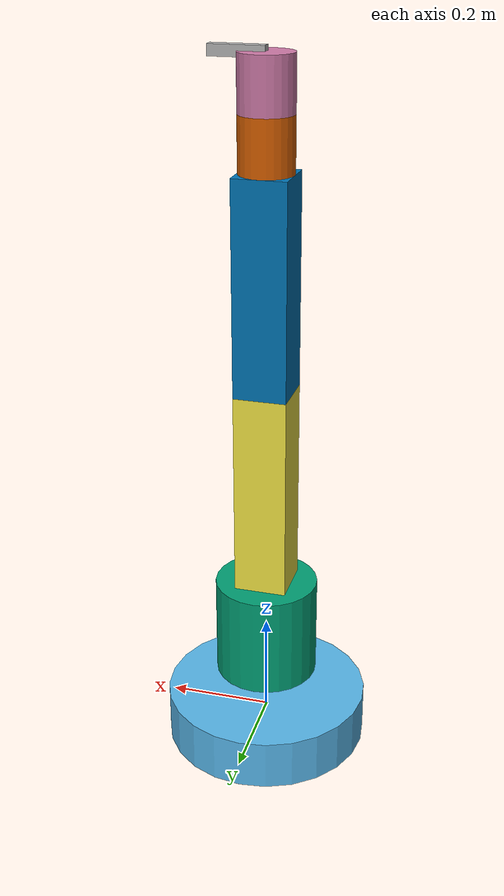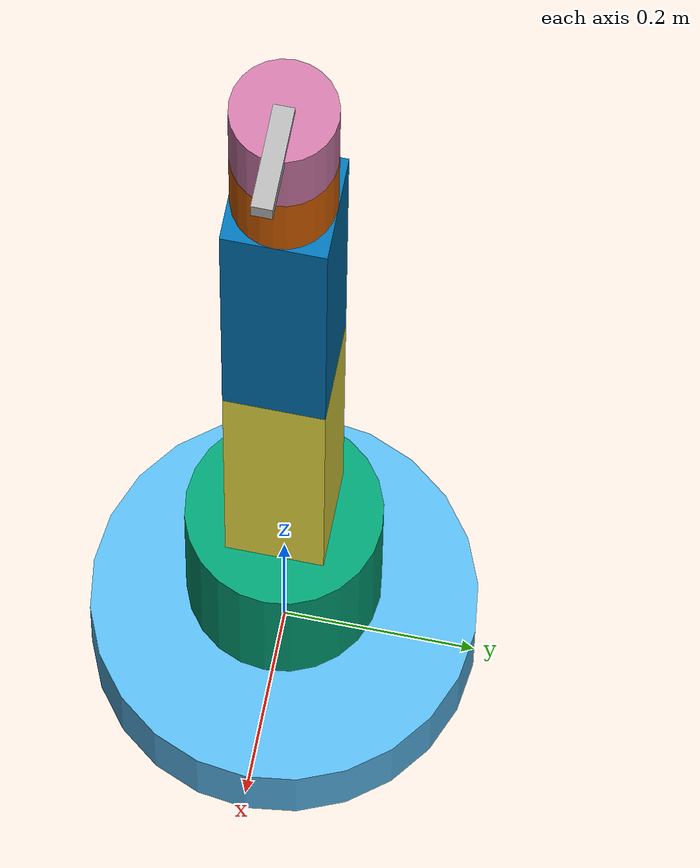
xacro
<?xml version="1.0"?>
<robot name="arm_6dof" xmlns:xacro="http://www.ros.org/wiki/xacro">

  <link name="world"/>
  <joint name="fixed" type="fixed">
    <parent link="world"/>
    <child link="base_link"/>
  </joint>

  <link name="base_link">
    <visual><geometry><cylinder length="0.1" radius="0.2"/></geometry></visual>
    <collision><geometry><cylinder length="0.1" radius="0.2"/></geometry></collision>
    <inertial><mass value="2.0"/><inertia ixx="0.1" ixy="0" ixz="0" iyy="0.1" iyz="0" izz="0.1"/></inertial>
  </link>

  <joint name="joint1" type="revolute">
    <parent link="base_link"/><child link="link1"/>
    <axis xyz="0 0 1"/><origin xyz="0 0 0.1"/>
    <limit lower="-3.14" upper="3.14" effort="10" velocity="1.0"/>
  </joint>
  <link name="link1">
    <visual><geometry><cylinder length="0.2" radius="0.1"/></geometry><origin xyz="0 0 0.1"/></visual>
    <inertial><mass value="1.0"/><inertia ixx="0.01" iyy="0.01" izz="0.01" ixy="0" ixz="0" iyz="0"/></inertial>
  </link>

  <joint name="joint2" type="revolute">
    <parent link="link1"/><child link="link2"/>
    <axis xyz="0 1 0"/><origin xyz="0 0 0.2"/>
    <limit lower="-1.57" upper="1.57" effort="10" velocity="1.0"/>
  </joint>
  <link name="link2">
    <visual><geometry><box size="0.1 0.1 0.4"/></geometry><origin xyz="0 0 0.2"/></visual>
    <inertial><mass value="1.0"/><inertia ixx="0.01" iyy="0.01" izz="0.01" ixy="0" ixz="0" iyz="0"/></inertial>
  </link>

  <joint name="joint3" type="revolute">
    <parent link="link2"/><child link="link3"/>
    <axis xyz="0 1 0"/><origin xyz="0 0 0.4"/>
    <limit lower="-1.57" upper="1.57" effort="10" velocity="1.0"/>
  </joint>
  <link name="link3">
    <visual><geometry><box size="0.1 0.1 0.4"/></geometry><origin xyz="0 0 0.2"/></visual>
    <inertial><mass value="1.0"/><inertia ixx="0.01" iyy="0.01" izz="0.01" ixy="0" ixz="0" iyz="0"/></inertial>
  </link>

  <joint name="joint4" type="revolute">
    <parent link="link3"/><child link="link4"/>
    <axis xyz="0 0 1"/><origin xyz="0 0 0.4"/>
    <limit lower="-3.14" upper="3.14" effort="10" velocity="1.0"/>
  </joint>
  <link name="link4">
    <visual><geometry><cylinder length="0.1" radius="0.05"/></geometry><origin xyz="0 0 0.05"/></visual>
    <inertial><mass value="0.5"/><inertia ixx="0.01" iyy="0.01" izz="0.01" ixy="0" ixz="0" iyz="0"/></inertial>
  </link>

  <joint name="joint5" type="revolute">
    <parent link="link4"/><child link="link5"/>
    <axis xyz="0 1 0"/><origin xyz="0 0 0.1"/>
    <limit lower="-1.57" upper="1.57" effort="10" velocity="1.0"/>
  </joint>
  <link name="link5">
    <visual><geometry><cylinder length="0.1" radius="0.05"/></geometry><origin xyz="0 0 0.05"/></visual>
    <inertial><mass value="0.5"/><inertia ixx="0.01" iyy="0.01" izz="0.01" ixy="0" ixz="0" iyz="0"/></inertial>
  </link>

  <joint name="joint6" type="revolute">
    <parent link="link5"/><child link="link6"/>
    <axis xyz="1 0 0"/><origin xyz="0 0 0.1"/>
    <limit lower="-3.14" upper="3.14" effort="10" velocity="1.0"/>
  </joint>
  <link name="link6">
    <visual><geometry><box size="0.1 0.02 0.02"/></geometry><origin xyz="0.05 0 0"/></visual>
    <inertial><mass value="0.2"/><inertia ixx="0.001" iyy="0.001" izz="0.001" ixy="0" ixz="0" iyz="0"/></inertial>
  </link>

  <ros2_control name="GazeboSimSystem" type="system">
    <hardware><plugin>gz_ros2_control/GazeboSimSystem</plugin></hardware>
    <joint name="joint1"><command_interface name="position"/><state_interface name="position"/><state_interface name="velocity"/></joint>
    <joint name="joint2"><command_interface name="position"/><state_interface name="position"/><state_interface name="velocity"/></joint>
    <joint name="joint3"><command_interface name="position"/><state_interface name="position"/><state_interface name="velocity"/></joint>
    <joint name="joint4"><command_interface name="position"/><state_interface name="position"/><state_interface name="velocity"/></joint>
    <joint name="joint5"><command_interface name="position"/><state_interface name="position"/><state_interface name="velocity"/></joint>
    <joint name="joint6"><command_interface name="position"/><state_interface name="position"/><state_interface name="velocity"/></joint>
  </ros2_control>

  <gazebo>
    <plugin filename="gz_ros2_control-system" name="gz_ros2_control::GazeboSimControl">
      <parameters>$(find my_arm_sim)/config/controllers.yaml</parameters>
    </plugin>
  </gazebo>

</robot>
